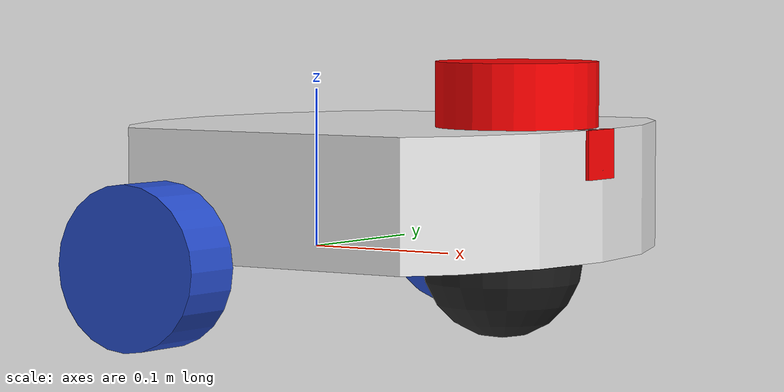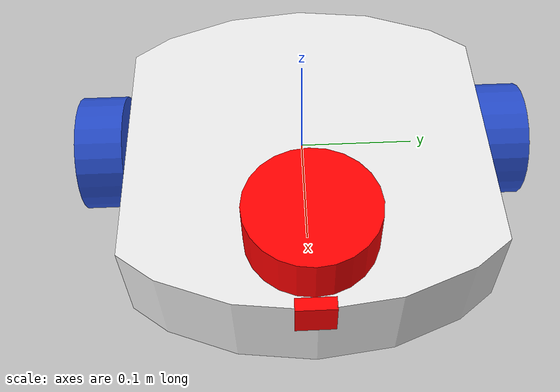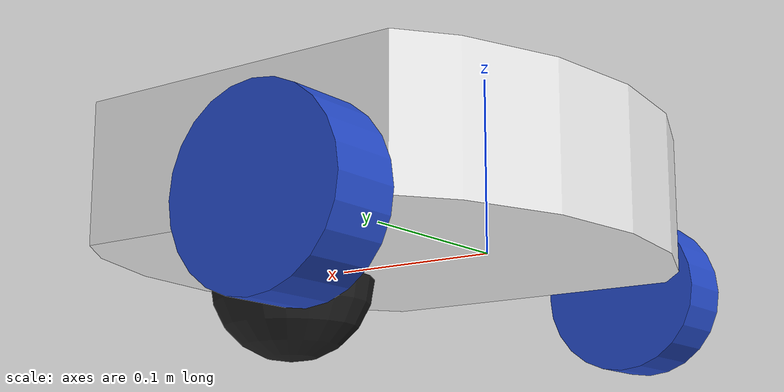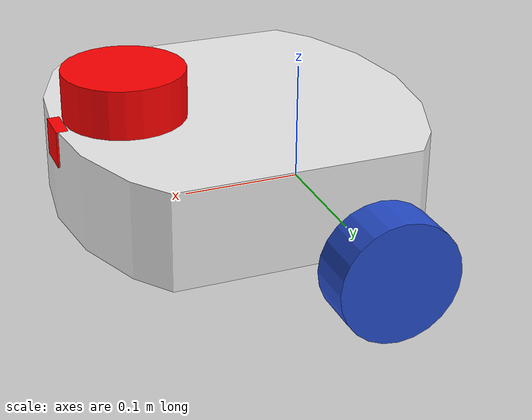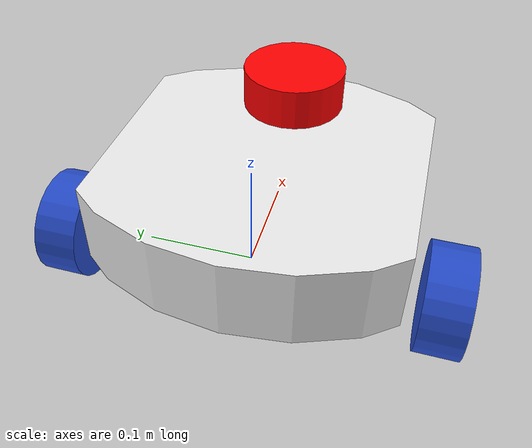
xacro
<?xml version="1.0"?>
<robot xmlns:xacro="http://www.ros.org/wiki/xacro"  name="robot">
    <xacro:include filename="inertial_macros.xacro" />
    <xacro:include filename="lidar.xacro" />
    <xacro:include filename="camera.xacro" />

    <!-- xacro:include filename="gazebo_control.xacro" / -->
    <xacro:include filename="ros2_control.xacro" />

    <xacro:include filename="robot_core.xacro" />

</robot>

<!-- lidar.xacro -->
<robot xmlns:xacro="http://www.ros.org/wiki/xacro" >

    <joint name="laser_joint" type="fixed">
        <parent link="chassis"/>
        <child link="laser_frame"/>
        <origin xyz="0.25 0 0.1" rpy="0 0 0"/>
    </joint>

    <link name="laser_frame">
        <visual>
            <geometry>
                <cylinder radius="0.05" length="0.04"/>
            </geometry>
            <material name="red"/>
        </visual>
        <collision>
            <geometry>
                <cylinder radius="0.05" length="0.04"/>
            </geometry>
        </collision>
        <xacro:inertial_cylinder mass="0.1" length="0.04" radius="0.05">
            <origin xyz="0 0 0" rpy="0 0 0"/>
        </xacro:inertial_cylinder>
    </link>
    <gazebo reference="laser_frame">
        <material>Gazebo/Red</material>
        <sensor name="laser" type="ray">
            <pose> 0 0 0 0 0 0 </pose>
            <visualize>true</visualize>
            <update_rate>10</update_rate>
            <ray>
                <scan>
                    <horizontal>
                        <samples>360</samples>
                        <min_angle>-3.14</min_angle>
                        <max_angle>3.14</max_angle>
                    </horizontal>
                </scan>
                <range>
                    <min>0.3</min>
                    <max>12</max>
                </range>
            </ray>
            <plugin name="laser_controller" filename="libgazebo_ros_ray_sensor.so">
                <ros>
                    <argument>--ros-args --remap ~/out:=scan</argument>
                </ros>
                <output_type>sensor_msgs/LaserScan</output_type>
                <frame_name>laser_frame</frame_name>
            </plugin>
        </sensor>
    </gazebo>
</robot>

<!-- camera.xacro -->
<robot xmlns:xacro="http://www.ros.org/wiki/xacro" >

    <joint name="camera_joint" type="fixed">
        <parent link="chassis"/>
        <child link="camera_link"/>
        <origin xyz="0.305 0 0.065" rpy="0 0 0"/>
    </joint>

    <link name="camera_link">
        <visual>
            <geometry>
                <box size="0.010 0.03 0.03"/>
            </geometry>
            <material name="red"/>
        </visual>
    </link>

    <joint name="camera_optical_joint" type="fixed">
        <origin xyz="0 0 0" rpy="${-pi/2} 0 ${-pi/2}" />
        <parent link="camera_link" />
        <child link="camera_link_optical" />
    </joint>

    <link name="camera_link_optical"></link>

    <gazebo reference="camera_link">
        <material>Gazebo/Red</material>
        <sensor name="camera" type="camera">
            <pose> 0 0 0 0 0 0 </pose>
            <visualize>true</visualize>
            <update_rate>10</update_rate>
            <camera>
                <horizontal_fov>1.089</horizontal_fov>
                <image>
                    <format>R8G8B8</format>
                    <width>640</width>
                    <height>480</height>
                </image>
                <clip>
                    <near>0.05</near>
                    <far>8.0</far>
                </clip>
            </camera>
            <plugin name="camera_controller" filename="libgazebo_ros_camera.so">
                <frame_name>camera_link_optical</frame_name>
            </plugin>
        </sensor>
    </gazebo>
</robot>

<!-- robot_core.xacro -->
<robot xmlns:xacro="http://www.ros.org/wiki/xacro">
    <xacro:include filename="colors.xacro" />

    <link name="base_link">
    </link>

    <link name="chassis">
        <visual>
            <origin xyz="0.12 0.055 0" rpy="0 0 ${pi/2}"/>
            <geometry>
                <!-- box size="0.3 0.3 0.15"/ -->
                <mesh filename="file://$(find diff_drive_bot)/meshes/body.stl" scale="0.0013 0.001 0.004"/>
            </geometry>
            <material name="white"/>
        </visual>
        <collision>
            <origin xyz="0.15 0 0.075" rpy="0 0 0"/>
            <geometry>
                <box size="0.3 0.3 0.15"/>
            </geometry>
        </collision>
        <xacro:inertial_box mass="0.5" x="0.3" y="0.3" z="0.15">
            <origin xyz="0.15 0 0.075" rpy="0 0 0"/>
        </xacro:inertial_box>
    </link>
    <gazebo reference="chassis">
        <material>Gazebo/White</material>
    </gazebo>

    <joint name="chassis_joint" type="fixed">
        <parent link="base_link"/>
        <child link="chassis"/>
        <origin xyz="-0.1 0 0"/>
    </joint>

    <!-- LEFT WHEEL -->

    <link name="left_wheel">
        <visual>
            <geometry>
                <cylinder length="0.04" radius="0.05" />/>
            </geometry>
            <material name="blue"/>
        </visual>
        <collision>
            <geometry>
                <cylinder length="0.04" radius="0.05" />/>
            </geometry>
            <material name="blue"/>
        </collision>
        <xacro:inertial_cylinder mass="0.1" length="0.05" radius="0.05">
            <origin xyz="0 0 0" rpy="0 0 0"/>
        </xacro:inertial_cylinder>
    </link>

    <joint name="left_wheel_joint" type="continuous">
        <parent link="base_link"/>
        <child link="left_wheel"/>
        <origin xyz="0 0.175 0" rpy="-${pi/2} 0 0"/>
        <axis xyz="0 0 1"/>
    </joint>

    <gazebo reference="left_wheel">
        <material>Gazebo/Blue</material>
    </gazebo>

    <!-- RIGHT WHEEL -->

    <link name="right_wheel">
        <visual>
            <geometry>
                <cylinder length="0.04" radius="0.05" />/>
            </geometry>
            <material name="blue"/>
        </visual>
        <collision>
            <geometry>
                <cylinder length="0.04" radius="0.05" />/>
            </geometry>
            <material name="blue"/>
        </collision>
        <xacro:inertial_cylinder mass="0.1" length="0.05" radius="0.05">
            <origin xyz="0 0 0" rpy="0 0 0"/>
        </xacro:inertial_cylinder>
    </link>

    <joint name="right_wheel_joint" type="continuous">
        <parent link="base_link"/>
        <child link="right_wheel"/>
        <origin xyz="0 -0.175 0" rpy="${pi/2} 0 0"/>
        <axis xyz="0 0 -1"/>
    </joint>

    <gazebo reference="right_wheel">
        <material>Gazebo/Blue</material>
    </gazebo>

    <!-- CASTER WHEEL -->

    <joint name="caster_wheel_joint" type="fixed">
        <parent link="chassis"/>
        <child link="caster_wheel"/>
        <origin xyz="0.24 0 0" rpy="0 0 0"/>
    </joint>

    <link name="caster_wheel">
        <visual>
            <geometry>
                <sphere radius="0.05" />
            </geometry>
            <material name="black"/>
        </visual>
        <collision>
            <geometry>
                <sphere radius="0.05" />
            </geometry>
            <material name="black"/>
        </collision>
        <xacro:inertial_sphere mass="0.1" radius="0.05">
            <origin xyz="0 0 0" rpy="0 0 0"/>
        </xacro:inertial_sphere>
    </link>
    <gazebo reference="caster_wheel">
        <material>Gazebo/Black</material>
    </gazebo>
    <gazebo reference="caster_wheel">
        <material>Gazebo/Black</material>
        <mu1 value="0.001"/>
        <mu2 value="0.001"/>
    </gazebo>

    <material name="red">
        <color rgba="1 0 0 1"/>
    </material>

</robot>
